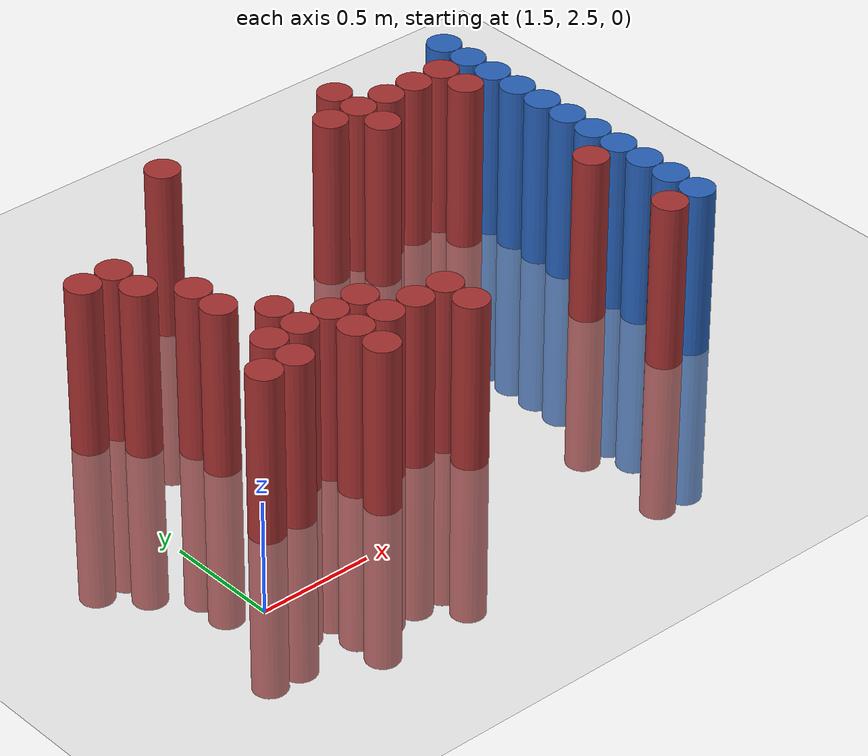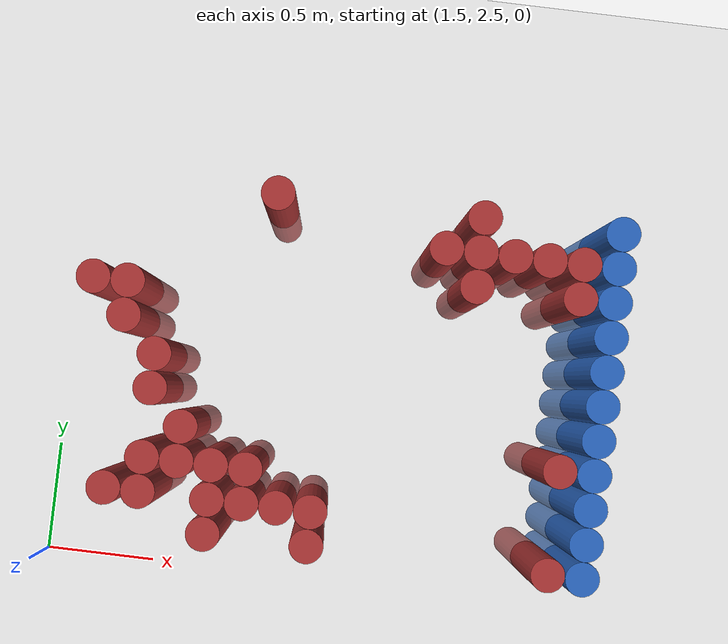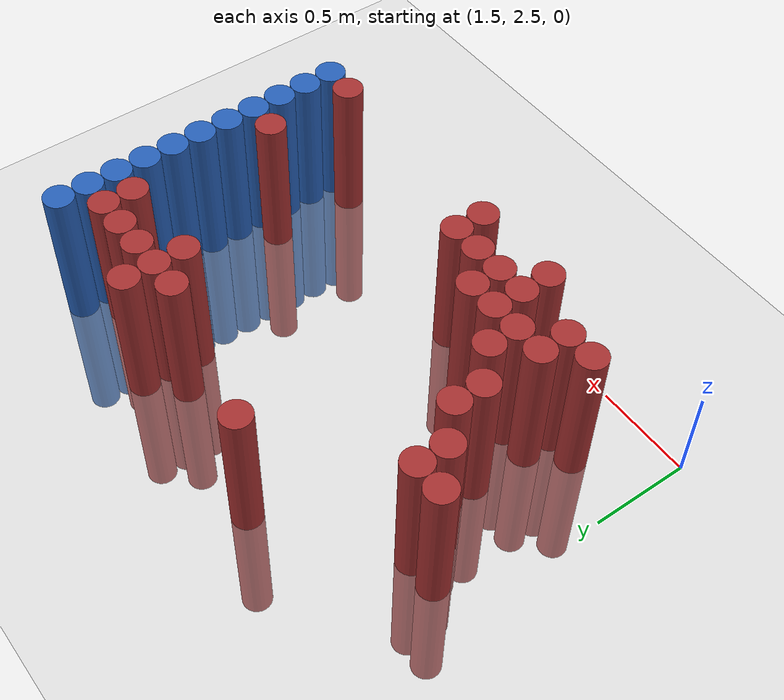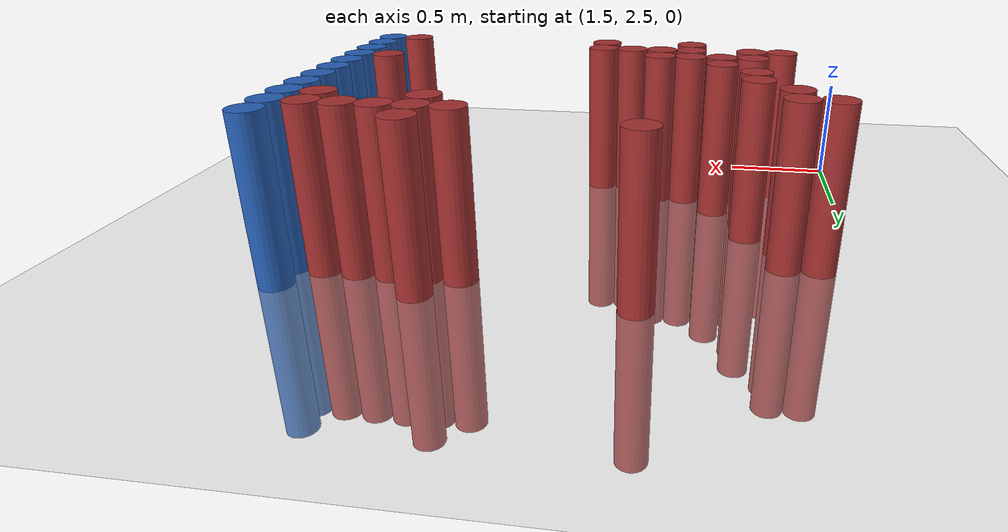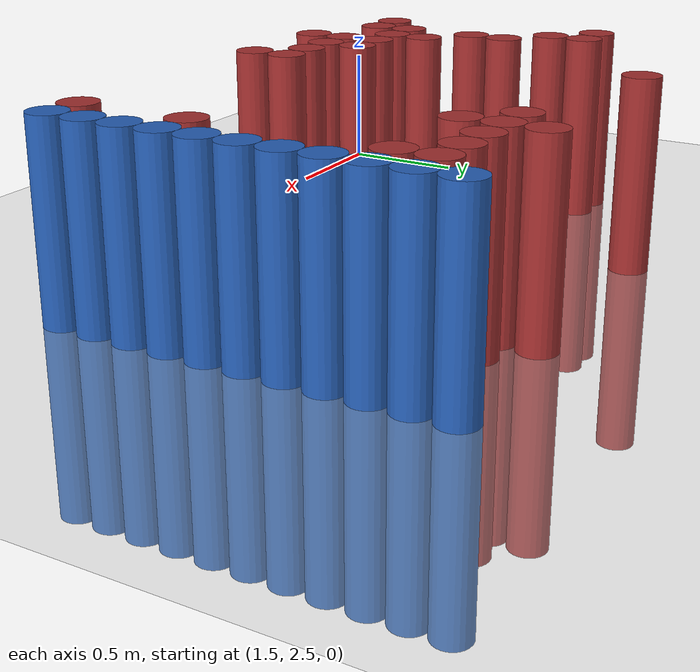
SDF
<sdf version="1.6">
 <world name="default">
  <model name="ground_plane">
   <static>1</static>
   <link name="link">
    <collision name="collision">
     <geometry><plane><normal>0 0 1</normal><size>100 100</size></plane></geometry>
     <surface><friction><ode><mu>100</mu><mu2>50</mu2></ode></friction></surface>
    </collision>
    <visual name="visual">
     <cast_shadows>0</cast_shadows>
     <geometry><plane><normal>0 0 1</normal><size>100 100</size></plane></geometry>
     <material>
      <script><uri>file://media/materials/scripts/gazebo.material</uri><name>Gazebo/Grey</name></script>
     </material>
    </visual>
   </link>
  </model>
  <model name="unit_cylinder_150">
   <static>1</static>
   <pose>3.925000 2.725000 0.000000 0.000000 0.000000 0.000000</pose>
   <link name="link">
    <inertial>
     <mass>1</mass>
     <inertia><ixx>0.145833</ixx><ixy>0</ixy><ixz>0</ixz><iyy>0.145833</iyy><iyz>0</iyz><izz>0.125</izz></inertia>
    </inertial>
    <collision name="collision">
     <geometry><cylinder><radius>0.075000</radius><length>1.5</length></cylinder></geometry>
    </collision>
    <visual name="visual">
     <geometry><cylinder><radius>0.075000</radius><length>1.5</length></cylinder></geometry>
     <material>
      <ambient>0.152000 0.379000 0.720000 1</ambient>
      <diffuse>0.152000 0.379000 0.720000 1</diffuse>
     </material>
     <material>
      <script><name>Gazebo/Grey</name><uri>file://media/materials/scripts/gazebo.material</uri></script>
     </material>
    </visual>
   </link>
  </model>
  <model name="unit_cylinder_152">
   <static>1</static>
   <pose>3.925000 2.875000 0.000000 0.000000 0.000000 0.000000</pose>
   <link name="link">
    <inertial>
     <mass>1</mass>
     <inertia><ixx>0.145833</ixx><ixy>0</ixy><ixz>0</ixz><iyy>0.145833</iyy><iyz>0</iyz><izz>0.125</izz></inertia>
    </inertial>
    <collision name="collision">
     <geometry><cylinder><radius>0.075000</radius><length>1.5</length></cylinder></geometry>
    </collision>
    <visual name="visual">
     <geometry><cylinder><radius>0.075000</radius><length>1.5</length></cylinder></geometry>
     <material>
      <ambient>0.152000 0.379000 0.720000 1</ambient>
      <diffuse>0.152000 0.379000 0.720000 1</diffuse>
     </material>
     <material>
      <script><name>Gazebo/Grey</name><uri>file://media/materials/scripts/gazebo.material</uri></script>
     </material>
    </visual>
   </link>
  </model>
  <model name="unit_cylinder_154">
   <static>1</static>
   <pose>3.925000 3.025000 0.000000 0.000000 0.000000 0.000000</pose>
   <link name="link">
    <inertial>
     <mass>1</mass>
     <inertia><ixx>0.145833</ixx><ixy>0</ixy><ixz>0</ixz><iyy>0.145833</iyy><iyz>0</iyz><izz>0.125</izz></inertia>
    </inertial>
    <collision name="collision">
     <geometry><cylinder><radius>0.075000</radius><length>1.5</length></cylinder></geometry>
    </collision>
    <visual name="visual">
     <geometry><cylinder><radius>0.075000</radius><length>1.5</length></cylinder></geometry>
     <material>
      <ambient>0.152000 0.379000 0.720000 1</ambient>
      <diffuse>0.152000 0.379000 0.720000 1</diffuse>
     </material>
     <material>
      <script><name>Gazebo/Grey</name><uri>file://media/materials/scripts/gazebo.material</uri></script>
     </material>
    </visual>
   </link>
  </model>
  <model name="unit_cylinder_156">
   <static>1</static>
   <pose>3.925000 3.175000 0.000000 0.000000 0.000000 0.000000</pose>
   <link name="link">
    <inertial>
     <mass>1</mass>
     <inertia><ixx>0.145833</ixx><ixy>0</ixy><ixz>0</ixz><iyy>0.145833</iyy><iyz>0</iyz><izz>0.125</izz></inertia>
    </inertial>
    <collision name="collision">
     <geometry><cylinder><radius>0.075000</radius><length>1.5</length></cylinder></geometry>
    </collision>
    <visual name="visual">
     <geometry><cylinder><radius>0.075000</radius><length>1.5</length></cylinder></geometry>
     <material>
      <ambient>0.152000 0.379000 0.720000 1</ambient>
      <diffuse>0.152000 0.379000 0.720000 1</diffuse>
     </material>
     <material>
      <script><name>Gazebo/Grey</name><uri>file://media/materials/scripts/gazebo.material</uri></script>
     </material>
    </visual>
   </link>
  </model>
  <model name="unit_cylinder_158">
   <static>1</static>
   <pose>3.925000 3.325000 0.000000 0.000000 0.000000 0.000000</pose>
   <link name="link">
    <inertial>
     <mass>1</mass>
     <inertia><ixx>0.145833</ixx><ixy>0</ixy><ixz>0</ixz><iyy>0.145833</iyy><iyz>0</iyz><izz>0.125</izz></inertia>
    </inertial>
    <collision name="collision">
     <geometry><cylinder><radius>0.075000</radius><length>1.5</length></cylinder></geometry>
    </collision>
    <visual name="visual">
     <geometry><cylinder><radius>0.075000</radius><length>1.5</length></cylinder></geometry>
     <material>
      <ambient>0.152000 0.379000 0.720000 1</ambient>
      <diffuse>0.152000 0.379000 0.720000 1</diffuse>
     </material>
     <material>
      <script><name>Gazebo/Grey</name><uri>file://media/materials/scripts/gazebo.material</uri></script>
     </material>
    </visual>
   </link>
  </model>
  <model name="unit_cylinder_160">
   <static>1</static>
   <pose>3.925000 3.475000 0.000000 0.000000 0.000000 0.000000</pose>
   <link name="link">
    <inertial>
     <mass>1</mass>
     <inertia><ixx>0.145833</ixx><ixy>0</ixy><ixz>0</ixz><iyy>0.145833</iyy><iyz>0</iyz><izz>0.125</izz></inertia>
    </inertial>
    <collision name="collision">
     <geometry><cylinder><radius>0.075000</radius><length>1.5</length></cylinder></geometry>
    </collision>
    <visual name="visual">
     <geometry><cylinder><radius>0.075000</radius><length>1.5</length></cylinder></geometry>
     <material>
      <ambient>0.152000 0.379000 0.720000 1</ambient>
      <diffuse>0.152000 0.379000 0.720000 1</diffuse>
     </material>
     <material>
      <script><name>Gazebo/Grey</name><uri>file://media/materials/scripts/gazebo.material</uri></script>
     </material>
    </visual>
   </link>
  </model>
  <model name="unit_cylinder_162">
   <static>1</static>
   <pose>3.925000 3.625000 0.000000 0.000000 0.000000 0.000000</pose>
   <link name="link">
    <inertial>
     <mass>1</mass>
     <inertia><ixx>0.145833</ixx><ixy>0</ixy><ixz>0</ixz><iyy>0.145833</iyy><iyz>0</iyz><izz>0.125</izz></inertia>
    </inertial>
    <collision name="collision">
     <geometry><cylinder><radius>0.075000</radius><length>1.5</length></cylinder></geometry>
    </collision>
    <visual name="visual">
     <geometry><cylinder><radius>0.075000</radius><length>1.5</length></cylinder></geometry>
     <material>
      <ambient>0.152000 0.379000 0.720000 1</ambient>
      <diffuse>0.152000 0.379000 0.720000 1</diffuse>
     </material>
     <material>
      <script><name>Gazebo/Grey</name><uri>file://media/materials/scripts/gazebo.material</uri></script>
     </material>
    </visual>
   </link>
  </model>
  <model name="unit_cylinder_164">
   <static>1</static>
   <pose>3.925000 3.775000 0.000000 0.000000 0.000000 0.000000</pose>
   <link name="link">
    <inertial>
     <mass>1</mass>
     <inertia><ixx>0.145833</ixx><ixy>0</ixy><ixz>0</ixz><iyy>0.145833</iyy><iyz>0</iyz><izz>0.125</izz></inertia>
    </inertial>
    <collision name="collision">
     <geometry><cylinder><radius>0.075000</radius><length>1.5</length></cylinder></geometry>
    </collision>
    <visual name="visual">
     <geometry><cylinder><radius>0.075000</radius><length>1.5</length></cylinder></geometry>
     <material>
      <ambient>0.152000 0.379000 0.720000 1</ambient>
      <diffuse>0.152000 0.379000 0.720000 1</diffuse>
     </material>
     <material>
      <script><name>Gazebo/Grey</name><uri>file://media/materials/scripts/gazebo.material</uri></script>
     </material>
    </visual>
   </link>
  </model>
  <model name="unit_cylinder_166">
   <static>1</static>
   <pose>3.925000 3.925000 0.000000 0.000000 0.000000 0.000000</pose>
   <link name="link">
    <inertial>
     <mass>1</mass>
     <inertia><ixx>0.145833</ixx><ixy>0</ixy><ixz>0</ixz><iyy>0.145833</iyy><iyz>0</iyz><izz>0.125</izz></inertia>
    </inertial>
    <collision name="collision">
     <geometry><cylinder><radius>0.075000</radius><length>1.5</length></cylinder></geometry>
    </collision>
    <visual name="visual">
     <geometry><cylinder><radius>0.075000</radius><length>1.5</length></cylinder></geometry>
     <material>
      <ambient>0.152000 0.379000 0.720000 1</ambient>
      <diffuse>0.152000 0.379000 0.720000 1</diffuse>
     </material>
     <material>
      <script><name>Gazebo/Grey</name><uri>file://media/materials/scripts/gazebo.material</uri></script>
     </material>
    </visual>
   </link>
  </model>
  <model name="unit_cylinder_168">
   <static>1</static>
   <pose>3.925000 4.075000 0.000000 0.000000 0.000000 0.000000</pose>
   <link name="link">
    <inertial>
     <mass>1</mass>
     <inertia><ixx>0.145833</ixx><ixy>0</ixy><ixz>0</ixz><iyy>0.145833</iyy><iyz>0</iyz><izz>0.125</izz></inertia>
    </inertial>
    <collision name="collision">
     <geometry><cylinder><radius>0.075000</radius><length>1.5</length></cylinder></geometry>
    </collision>
    <visual name="visual">
     <geometry><cylinder><radius>0.075000</radius><length>1.5</length></cylinder></geometry>
     <material>
      <ambient>0.152000 0.379000 0.720000 1</ambient>
      <diffuse>0.152000 0.379000 0.720000 1</diffuse>
     </material>
     <material>
      <script><name>Gazebo/Grey</name><uri>file://media/materials/scripts/gazebo.material</uri></script>
     </material>
    </visual>
   </link>
  </model>
  <model name="unit_cylinder_170">
   <static>1</static>
   <pose>3.925000 4.225000 0.000000 0.000000 0.000000 0.000000</pose>
   <link name="link">
    <inertial>
     <mass>1</mass>
     <inertia><ixx>0.145833</ixx><ixy>0</ixy><ixz>0</ixz><iyy>0.145833</iyy><iyz>0</iyz><izz>0.125</izz></inertia>
    </inertial>
    <collision name="collision">
     <geometry><cylinder><radius>0.075000</radius><length>1.5</length></cylinder></geometry>
    </collision>
    <visual name="visual">
     <geometry><cylinder><radius>0.075000</radius><length>1.5</length></cylinder></geometry>
     <material>
      <ambient>0.152000 0.379000 0.720000 1</ambient>
      <diffuse>0.152000 0.379000 0.720000 1</diffuse>
     </material>
     <material>
      <script><name>Gazebo/Grey</name><uri>file://media/materials/scripts/gazebo.material</uri></script>
     </material>
    </visual>
   </link>
  </model>
  <model name="unit_cylinder_430">
   <static>1</static>
   <pose>1.675000 3.775000 0.000000 0.000000 0.000000 0.000000</pose>
   <link name="link">
    <inertial>
     <mass>1</mass>
     <inertia><ixx>0.145833</ixx><ixy>0</ixy><ixz>0</ixz><iyy>0.145833</iyy><iyz>0</iyz><izz>0.125</izz></inertia>
    </inertial>
    <collision name="collision">
     <geometry><cylinder><radius>0.075000</radius><length>1.5</length></cylinder></geometry>
    </collision>
    <visual name="visual">
     <geometry><cylinder><radius>0.075000</radius><length>1.5</length></cylinder></geometry>
     <material>
      <ambient>0.648000 0.192000 0.192000 1</ambient>
      <diffuse>0.648000 0.192000 0.192000 1</diffuse>
     </material>
     <material>
      <script><name>Gazebo/Grey</name><uri>file://media/materials/scripts/gazebo.material</uri></script>
     </material>
    </visual>
   </link>
  </model>
  <model name="unit_cylinder_434">
   <static>1</static>
   <pose>1.825000 2.875000 0.000000 0.000000 0.000000 0.000000</pose>
   <link name="link">
    <inertial>
     <mass>1</mass>
     <inertia><ixx>0.145833</ixx><ixy>0</ixy><ixz>0</ixz><iyy>0.145833</iyy><iyz>0</iyz><izz>0.125</izz></inertia>
    </inertial>
    <collision name="collision">
     <geometry><cylinder><radius>0.075000</radius><length>1.5</length></cylinder></geometry>
    </collision>
    <visual name="visual">
     <geometry><cylinder><radius>0.075000</radius><length>1.5</length></cylinder></geometry>
     <material>
      <ambient>0.648000 0.192000 0.192000 1</ambient>
      <diffuse>0.648000 0.192000 0.192000 1</diffuse>
     </material>
     <material>
      <script><name>Gazebo/Grey</name><uri>file://media/materials/scripts/gazebo.material</uri></script>
     </material>
    </visual>
   </link>
  </model>
  <model name="unit_cylinder_435">
   <static>1</static>
   <pose>1.825000 3.625000 0.000000 0.000000 0.000000 0.000000</pose>
   <link name="link">
    <inertial>
     <mass>1</mass>
     <inertia><ixx>0.145833</ixx><ixy>0</ixy><ixz>0</ixz><iyy>0.145833</iyy><iyz>0</iyz><izz>0.125</izz></inertia>
    </inertial>
    <collision name="collision">
     <geometry><cylinder><radius>0.075000</radius><length>1.5</length></cylinder></geometry>
    </collision>
    <visual name="visual">
     <geometry><cylinder><radius>0.075000</radius><length>1.5</length></cylinder></geometry>
     <material>
      <ambient>0.648000 0.192000 0.192000 1</ambient>
      <diffuse>0.648000 0.192000 0.192000 1</diffuse>
     </material>
     <material>
      <script><name>Gazebo/Grey</name><uri>file://media/materials/scripts/gazebo.material</uri></script>
     </material>
    </visual>
   </link>
  </model>
  <model name="unit_cylinder_436">
   <static>1</static>
   <pose>1.825000 3.775000 0.000000 0.000000 0.000000 0.000000</pose>
   <link name="link">
    <inertial>
     <mass>1</mass>
     <inertia><ixx>0.145833</ixx><ixy>0</ixy><ixz>0</ixz><iyy>0.145833</iyy><iyz>0</iyz><izz>0.125</izz></inertia>
    </inertial>
    <collision name="collision">
     <geometry><cylinder><radius>0.075000</radius><length>1.5</length></cylinder></geometry>
    </collision>
    <visual name="visual">
     <geometry><cylinder><radius>0.075000</radius><length>1.5</length></cylinder></geometry>
     <material>
      <ambient>0.648000 0.192000 0.192000 1</ambient>
      <diffuse>0.648000 0.192000 0.192000 1</diffuse>
     </material>
     <material>
      <script><name>Gazebo/Grey</name><uri>file://media/materials/scripts/gazebo.material</uri></script>
     </material>
    </visual>
   </link>
  </model>
  <model name="unit_cylinder_443">
   <static>1</static>
   <pose>1.975000 2.875000 0.000000 0.000000 0.000000 0.000000</pose>
   <link name="link">
    <inertial>
     <mass>1</mass>
     <inertia><ixx>0.145833</ixx><ixy>0</ixy><ixz>0</ixz><iyy>0.145833</iyy><iyz>0</iyz><izz>0.125</izz></inertia>
    </inertial>
    <collision name="collision">
     <geometry><cylinder><radius>0.075000</radius><length>1.5</length></cylinder></geometry>
    </collision>
    <visual name="visual">
     <geometry><cylinder><radius>0.075000</radius><length>1.5</length></cylinder></geometry>
     <material>
      <ambient>0.648000 0.192000 0.192000 1</ambient>
      <diffuse>0.648000 0.192000 0.192000 1</diffuse>
     </material>
     <material>
      <script><name>Gazebo/Grey</name><uri>file://media/materials/scripts/gazebo.material</uri></script>
     </material>
    </visual>
   </link>
  </model>
  <model name="unit_cylinder_444">
   <static>1</static>
   <pose>1.975000 3.025000 0.000000 0.000000 0.000000 0.000000</pose>
   <link name="link">
    <inertial>
     <mass>1</mass>
     <inertia><ixx>0.145833</ixx><ixy>0</ixy><ixz>0</ixz><iyy>0.145833</iyy><iyz>0</iyz><izz>0.125</izz></inertia>
    </inertial>
    <collision name="collision">
     <geometry><cylinder><radius>0.075000</radius><length>1.5</length></cylinder></geometry>
    </collision>
    <visual name="visual">
     <geometry><cylinder><radius>0.075000</radius><length>1.5</length></cylinder></geometry>
     <material>
      <ambient>0.648000 0.192000 0.192000 1</ambient>
      <diffuse>0.648000 0.192000 0.192000 1</diffuse>
     </material>
     <material>
      <script><name>Gazebo/Grey</name><uri>file://media/materials/scripts/gazebo.material</uri></script>
     </material>
    </visual>
   </link>
  </model>
  <model name="unit_cylinder_445">
   <static>1</static>
   <pose>1.975000 3.325000 0.000000 0.000000 0.000000 0.000000</pose>
   <link name="link">
    <inertial>
     <mass>1</mass>
     <inertia><ixx>0.145833</ixx><ixy>0</ixy><ixz>0</ixz><iyy>0.145833</iyy><iyz>0</iyz><izz>0.125</izz></inertia>
    </inertial>
    <collision name="collision">
     <geometry><cylinder><radius>0.075000</radius><length>1.5</length></cylinder></geometry>
    </collision>
    <visual name="visual">
     <geometry><cylinder><radius>0.075000</radius><length>1.5</length></cylinder></geometry>
     <material>
      <ambient>0.648000 0.192000 0.192000 1</ambient>
      <diffuse>0.648000 0.192000 0.192000 1</diffuse>
     </material>
     <material>
      <script><name>Gazebo/Grey</name><uri>file://media/materials/scripts/gazebo.material</uri></script>
     </material>
    </visual>
   </link>
  </model>
  <model name="unit_cylinder_446">
   <static>1</static>
   <pose>1.975000 3.475000 0.000000 0.000000 0.000000 0.000000</pose>
   <link name="link">
    <inertial>
     <mass>1</mass>
     <inertia><ixx>0.145833</ixx><ixy>0</ixy><ixz>0</ixz><iyy>0.145833</iyy><iyz>0</iyz><izz>0.125</izz></inertia>
    </inertial>
    <collision name="collision">
     <geometry><cylinder><radius>0.075000</radius><length>1.5</length></cylinder></geometry>
    </collision>
    <visual name="visual">
     <geometry><cylinder><radius>0.075000</radius><length>1.5</length></cylinder></geometry>
     <material>
      <ambient>0.648000 0.192000 0.192000 1</ambient>
      <diffuse>0.648000 0.192000 0.192000 1</diffuse>
     </material>
     <material>
      <script><name>Gazebo/Grey</name><uri>file://media/materials/scripts/gazebo.material</uri></script>
     </material>
    </visual>
   </link>
  </model>
  <model name="unit_cylinder_455">
   <static>1</static>
   <pose>2.125000 3.025000 0.000000 0.000000 0.000000 0.000000</pose>
   <link name="link">
    <inertial>
     <mass>1</mass>
     <inertia><ixx>0.145833</ixx><ixy>0</ixy><ixz>0</ixz><iyy>0.145833</iyy><iyz>0</iyz><izz>0.125</izz></inertia>
    </inertial>
    <collision name="collision">
     <geometry><cylinder><radius>0.075000</radius><length>1.5</length></cylinder></geometry>
    </collision>
    <visual name="visual">
     <geometry><cylinder><radius>0.075000</radius><length>1.5</length></cylinder></geometry>
     <material>
      <ambient>0.648000 0.192000 0.192000 1</ambient>
      <diffuse>0.648000 0.192000 0.192000 1</diffuse>
     </material>
     <material>
      <script><name>Gazebo/Grey</name><uri>file://media/materials/scripts/gazebo.material</uri></script>
     </material>
    </visual>
   </link>
  </model>
  <model name="unit_cylinder_456">
   <static>1</static>
   <pose>2.125000 3.175000 0.000000 0.000000 0.000000 0.000000</pose>
   <link name="link">
    <inertial>
     <mass>1</mass>
     <inertia><ixx>0.145833</ixx><ixy>0</ixy><ixz>0</ixz><iyy>0.145833</iyy><iyz>0</iyz><izz>0.125</izz></inertia>
    </inertial>
    <collision name="collision">
     <geometry><cylinder><radius>0.075000</radius><length>1.5</length></cylinder></geometry>
    </collision>
    <visual name="visual">
     <geometry><cylinder><radius>0.075000</radius><length>1.5</length></cylinder></geometry>
     <material>
      <ambient>0.648000 0.192000 0.192000 1</ambient>
      <diffuse>0.648000 0.192000 0.192000 1</diffuse>
     </material>
     <material>
      <script><name>Gazebo/Grey</name><uri>file://media/materials/scripts/gazebo.material</uri></script>
     </material>
    </visual>
   </link>
  </model>
  <model name="unit_cylinder_467">
   <static>1</static>
   <pose>2.275000 2.725000 0.000000 0.000000 0.000000 0.000000</pose>
   <link name="link">
    <inertial>
     <mass>1</mass>
     <inertia><ixx>0.145833</ixx><ixy>0</ixy><ixz>0</ixz><iyy>0.145833</iyy><iyz>0</iyz><izz>0.125</izz></inertia>
    </inertial>
    <collision name="collision">
     <geometry><cylinder><radius>0.075000</radius><length>1.5</length></cylinder></geometry>
    </collision>
    <visual name="visual">
     <geometry><cylinder><radius>0.075000</radius><length>1.5</length></cylinder></geometry>
     <material>
      <ambient>0.648000 0.192000 0.192000 1</ambient>
      <diffuse>0.648000 0.192000 0.192000 1</diffuse>
     </material>
     <material>
      <script><name>Gazebo/Grey</name><uri>file://media/materials/scripts/gazebo.material</uri></script>
     </material>
    </visual>
   </link>
  </model>
  <model name="unit_cylinder_468">
   <static>1</static>
   <pose>2.275000 2.875000 0.000000 0.000000 0.000000 0.000000</pose>
   <link name="link">
    <inertial>
     <mass>1</mass>
     <inertia><ixx>0.145833</ixx><ixy>0</ixy><ixz>0</ixz><iyy>0.145833</iyy><iyz>0</iyz><izz>0.125</izz></inertia>
    </inertial>
    <collision name="collision">
     <geometry><cylinder><radius>0.075000</radius><length>1.5</length></cylinder></geometry>
    </collision>
    <visual name="visual">
     <geometry><cylinder><radius>0.075000</radius><length>1.5</length></cylinder></geometry>
     <material>
      <ambient>0.648000 0.192000 0.192000 1</ambient>
      <diffuse>0.648000 0.192000 0.192000 1</diffuse>
     </material>
     <material>
      <script><name>Gazebo/Grey</name><uri>file://media/materials/scripts/gazebo.material</uri></script>
     </material>
    </visual>
   </link>
  </model>
  <model name="unit_cylinder_469">
   <static>1</static>
   <pose>2.275000 3.025000 0.000000 0.000000 0.000000 0.000000</pose>
   <link name="link">
    <inertial>
     <mass>1</mass>
     <inertia><ixx>0.145833</ixx><ixy>0</ixy><ixz>0</ixz><iyy>0.145833</iyy><iyz>0</iyz><izz>0.125</izz></inertia>
    </inertial>
    <collision name="collision">
     <geometry><cylinder><radius>0.075000</radius><length>1.5</length></cylinder></geometry>
    </collision>
    <visual name="visual">
     <geometry><cylinder><radius>0.075000</radius><length>1.5</length></cylinder></geometry>
     <material>
      <ambient>0.648000 0.192000 0.192000 1</ambient>
      <diffuse>0.648000 0.192000 0.192000 1</diffuse>
     </material>
     <material>
      <script><name>Gazebo/Grey</name><uri>file://media/materials/scripts/gazebo.material</uri></script>
     </material>
    </visual>
   </link>
  </model>
  <model name="unit_cylinder_481">
   <static>1</static>
   <pose>2.425000 2.875000 0.000000 0.000000 0.000000 0.000000</pose>
   <link name="link">
    <inertial>
     <mass>1</mass>
     <inertia><ixx>0.145833</ixx><ixy>0</ixy><ixz>0</ixz><iyy>0.145833</iyy><iyz>0</iyz><izz>0.125</izz></inertia>
    </inertial>
    <collision name="collision">
     <geometry><cylinder><radius>0.075000</radius><length>1.5</length></cylinder></geometry>
    </collision>
    <visual name="visual">
     <geometry><cylinder><radius>0.075000</radius><length>1.5</length></cylinder></geometry>
     <material>
      <ambient>0.648000 0.192000 0.192000 1</ambient>
      <diffuse>0.648000 0.192000 0.192000 1</diffuse>
     </material>
     <material>
      <script><name>Gazebo/Grey</name><uri>file://media/materials/scripts/gazebo.material</uri></script>
     </material>
    </visual>
   </link>
  </model>
  <model name="unit_cylinder_482">
   <static>1</static>
   <pose>2.425000 3.025000 0.000000 0.000000 0.000000 0.000000</pose>
   <link name="link">
    <inertial>
     <mass>1</mass>
     <inertia><ixx>0.145833</ixx><ixy>0</ixy><ixz>0</ixz><iyy>0.145833</iyy><iyz>0</iyz><izz>0.125</izz></inertia>
    </inertial>
    <collision name="collision">
     <geometry><cylinder><radius>0.075000</radius><length>1.5</length></cylinder></geometry>
    </collision>
    <visual name="visual">
     <geometry><cylinder><radius>0.075000</radius><length>1.5</length></cylinder></geometry>
     <material>
      <ambient>0.648000 0.192000 0.192000 1</ambient>
      <diffuse>0.648000 0.192000 0.192000 1</diffuse>
     </material>
     <material>
      <script><name>Gazebo/Grey</name><uri>file://media/materials/scripts/gazebo.material</uri></script>
     </material>
    </visual>
   </link>
  </model>
  <model name="unit_cylinder_483">
   <static>1</static>
   <pose>2.425000 4.225000 0.000000 0.000000 0.000000 0.000000</pose>
   <link name="link">
    <inertial>
     <mass>1</mass>
     <inertia><ixx>0.145833</ixx><ixy>0</ixy><ixz>0</ixz><iyy>0.145833</iyy><iyz>0</iyz><izz>0.125</izz></inertia>
    </inertial>
    <collision name="collision">
     <geometry><cylinder><radius>0.075000</radius><length>1.5</length></cylinder></geometry>
    </collision>
    <visual name="visual">
     <geometry><cylinder><radius>0.075000</radius><length>1.5</length></cylinder></geometry>
     <material>
      <ambient>0.648000 0.192000 0.192000 1</ambient>
      <diffuse>0.648000 0.192000 0.192000 1</diffuse>
     </material>
     <material>
      <script><name>Gazebo/Grey</name><uri>file://media/materials/scripts/gazebo.material</uri></script>
     </material>
    </visual>
   </link>
  </model>
  <model name="unit_cylinder_494">
   <static>1</static>
   <pose>2.575000 2.875000 0.000000 0.000000 0.000000 0.000000</pose>
   <link name="link">
    <inertial>
     <mass>1</mass>
     <inertia><ixx>0.145833</ixx><ixy>0</ixy><ixz>0</ixz><iyy>0.145833</iyy><iyz>0</iyz><izz>0.125</izz></inertia>
    </inertial>
    <collision name="collision">
     <geometry><cylinder><radius>0.075000</radius><length>1.5</length></cylinder></geometry>
    </collision>
    <visual name="visual">
     <geometry><cylinder><radius>0.075000</radius><length>1.5</length></cylinder></geometry>
     <material>
      <ambient>0.648000 0.192000 0.192000 1</ambient>
      <diffuse>0.648000 0.192000 0.192000 1</diffuse>
     </material>
     <material>
      <script><name>Gazebo/Grey</name><uri>file://media/materials/scripts/gazebo.material</uri></script>
     </material>
    </visual>
   </link>
  </model>
  <model name="unit_cylinder_499">
   <static>1</static>
   <pose>2.725000 2.725000 0.000000 0.000000 0.000000 0.000000</pose>
   <link name="link">
    <inertial>
     <mass>1</mass>
     <inertia><ixx>0.145833</ixx><ixy>0</ixy><ixz>0</ixz><iyy>0.145833</iyy><iyz>0</iyz><izz>0.125</izz></inertia>
    </inertial>
    <collision name="collision">
     <geometry><cylinder><radius>0.075000</radius><length>1.5</length></cylinder></geometry>
    </collision>
    <visual name="visual">
     <geometry><cylinder><radius>0.075000</radius><length>1.5</length></cylinder></geometry>
     <material>
      <ambient>0.648000 0.192000 0.192000 1</ambient>
      <diffuse>0.648000 0.192000 0.192000 1</diffuse>
     </material>
     <material>
      <script><name>Gazebo/Grey</name><uri>file://media/materials/scripts/gazebo.material</uri></script>
     </material>
    </visual>
   </link>
  </model>
  <model name="unit_cylinder_500">
   <static>1</static>
   <pose>2.725000 2.875000 0.000000 0.000000 0.000000 0.000000</pose>
   <link name="link">
    <inertial>
     <mass>1</mass>
     <inertia><ixx>0.145833</ixx><ixy>0</ixy><ixz>0</ixz><iyy>0.145833</iyy><iyz>0</iyz><izz>0.125</izz></inertia>
    </inertial>
    <collision name="collision">
     <geometry><cylinder><radius>0.075000</radius><length>1.5</length></cylinder></geometry>
    </collision>
    <visual name="visual">
     <geometry><cylinder><radius>0.075000</radius><length>1.5</length></cylinder></geometry>
     <material>
      <ambient>0.648000 0.192000 0.192000 1</ambient>
      <diffuse>0.648000 0.192000 0.192000 1</diffuse>
     </material>
     <material>
      <script><name>Gazebo/Grey</name><uri>file://media/materials/scripts/gazebo.material</uri></script>
     </material>
    </visual>
   </link>
  </model>
  <model name="unit_cylinder_513">
   <static>1</static>
   <pose>3.175000 4.075000 0.000000 0.000000 0.000000 0.000000</pose>
   <link name="link">
    <inertial>
     <mass>1</mass>
     <inertia><ixx>0.145833</ixx><ixy>0</ixy><ixz>0</ixz><iyy>0.145833</iyy><iyz>0</iyz><izz>0.125</izz></inertia>
    </inertial>
    <collision name="collision">
     <geometry><cylinder><radius>0.075000</radius><length>1.5</length></cylinder></geometry>
    </collision>
    <visual name="visual">
     <geometry><cylinder><radius>0.075000</radius><length>1.5</length></cylinder></geometry>
     <material>
      <ambient>0.648000 0.192000 0.192000 1</ambient>
      <diffuse>0.648000 0.192000 0.192000 1</diffuse>
     </material>
     <material>
      <script><name>Gazebo/Grey</name><uri>file://media/materials/scripts/gazebo.material</uri></script>
     </material>
    </visual>
   </link>
  </model>
  <model name="unit_cylinder_520">
   <static>1</static>
   <pose>3.325000 3.925000 0.000000 0.000000 0.000000 0.000000</pose>
   <link name="link">
    <inertial>
     <mass>1</mass>
     <inertia><ixx>0.145833</ixx><ixy>0</ixy><ixz>0</ixz><iyy>0.145833</iyy><iyz>0</iyz><izz>0.125</izz></inertia>
    </inertial>
    <collision name="collision">
     <geometry><cylinder><radius>0.075000</radius><length>1.5</length></cylinder></geometry>
    </collision>
    <visual name="visual">
     <geometry><cylinder><radius>0.075000</radius><length>1.5</length></cylinder></geometry>
     <material>
      <ambient>0.648000 0.192000 0.192000 1</ambient>
      <diffuse>0.648000 0.192000 0.192000 1</diffuse>
     </material>
     <material>
      <script><name>Gazebo/Grey</name><uri>file://media/materials/scripts/gazebo.material</uri></script>
     </material>
    </visual>
   </link>
  </model>
  <model name="unit_cylinder_521">
   <static>1</static>
   <pose>3.325000 4.075000 0.000000 0.000000 0.000000 0.000000</pose>
   <link name="link">
    <inertial>
     <mass>1</mass>
     <inertia><ixx>0.145833</ixx><ixy>0</ixy><ixz>0</ixz><iyy>0.145833</iyy><iyz>0</iyz><izz>0.125</izz></inertia>
    </inertial>
    <collision name="collision">
     <geometry><cylinder><radius>0.075000</radius><length>1.5</length></cylinder></geometry>
    </collision>
    <visual name="visual">
     <geometry><cylinder><radius>0.075000</radius><length>1.5</length></cylinder></geometry>
     <material>
      <ambient>0.648000 0.192000 0.192000 1</ambient>
      <diffuse>0.648000 0.192000 0.192000 1</diffuse>
     </material>
     <material>
      <script><name>Gazebo/Grey</name><uri>file://media/materials/scripts/gazebo.material</uri></script>
     </material>
    </visual>
   </link>
  </model>
  <model name="unit_cylinder_522">
   <static>1</static>
   <pose>3.325000 4.225000 0.000000 0.000000 0.000000 0.000000</pose>
   <link name="link">
    <inertial>
     <mass>1</mass>
     <inertia><ixx>0.145833</ixx><ixy>0</ixy><ixz>0</ixz><iyy>0.145833</iyy><iyz>0</iyz><izz>0.125</izz></inertia>
    </inertial>
    <collision name="collision">
     <geometry><cylinder><radius>0.075000</radius><length>1.5</length></cylinder></geometry>
    </collision>
    <visual name="visual">
     <geometry><cylinder><radius>0.075000</radius><length>1.5</length></cylinder></geometry>
     <material>
      <ambient>0.648000 0.192000 0.192000 1</ambient>
      <diffuse>0.648000 0.192000 0.192000 1</diffuse>
     </material>
     <material>
      <script><name>Gazebo/Grey</name><uri>file://media/materials/scripts/gazebo.material</uri></script>
     </material>
    </visual>
   </link>
  </model>
  <model name="unit_cylinder_534">
   <static>1</static>
   <pose>3.475000 4.075000 0.000000 0.000000 0.000000 0.000000</pose>
   <link name="link">
    <inertial>
     <mass>1</mass>
     <inertia><ixx>0.145833</ixx><ixy>0</ixy><ixz>0</ixz><iyy>0.145833</iyy><iyz>0</iyz><izz>0.125</izz></inertia>
    </inertial>
    <collision name="collision">
     <geometry><cylinder><radius>0.075000</radius><length>1.5</length></cylinder></geometry>
    </collision>
    <visual name="visual">
     <geometry><cylinder><radius>0.075000</radius><length>1.5</length></cylinder></geometry>
     <material>
      <ambient>0.648000 0.192000 0.192000 1</ambient>
      <diffuse>0.648000 0.192000 0.192000 1</diffuse>
     </material>
     <material>
      <script><name>Gazebo/Grey</name><uri>file://media/materials/scripts/gazebo.material</uri></script>
     </material>
    </visual>
   </link>
  </model>
  <model name="unit_cylinder_548">
   <static>1</static>
   <pose>3.625000 4.075000 0.000000 0.000000 0.000000 0.000000</pose>
   <link name="link">
    <inertial>
     <mass>1</mass>
     <inertia><ixx>0.145833</ixx><ixy>0</ixy><ixz>0</ixz><iyy>0.145833</iyy><iyz>0</iyz><izz>0.125</izz></inertia>
    </inertial>
    <collision name="collision">
     <geometry><cylinder><radius>0.075000</radius><length>1.5</length></cylinder></geometry>
    </collision>
    <visual name="visual">
     <geometry><cylinder><radius>0.075000</radius><length>1.5</length></cylinder></geometry>
     <material>
      <ambient>0.648000 0.192000 0.192000 1</ambient>
      <diffuse>0.648000 0.192000 0.192000 1</diffuse>
     </material>
     <material>
      <script><name>Gazebo/Grey</name><uri>file://media/materials/scripts/gazebo.material</uri></script>
     </material>
    </visual>
   </link>
  </model>
  <model name="unit_cylinder_564">
   <static>1</static>
   <pose>3.775000 2.725000 0.000000 0.000000 0.000000 0.000000</pose>
   <link name="link">
    <inertial>
     <mass>1</mass>
     <inertia><ixx>0.145833</ixx><ixy>0</ixy><ixz>0</ixz><iyy>0.145833</iyy><iyz>0</iyz><izz>0.125</izz></inertia>
    </inertial>
    <collision name="collision">
     <geometry><cylinder><radius>0.075000</radius><length>1.5</length></cylinder></geometry>
    </collision>
    <visual name="visual">
     <geometry><cylinder><radius>0.075000</radius><length>1.5</length></cylinder></geometry>
     <material>
      <ambient>0.648000 0.192000 0.192000 1</ambient>
      <diffuse>0.648000 0.192000 0.192000 1</diffuse>
     </material>
     <material>
      <script><name>Gazebo/Grey</name><uri>file://media/materials/scripts/gazebo.material</uri></script>
     </material>
    </visual>
   </link>
  </model>
  <model name="unit_cylinder_565">
   <static>1</static>
   <pose>3.775000 3.175000 0.000000 0.000000 0.000000 0.000000</pose>
   <link name="link">
    <inertial>
     <mass>1</mass>
     <inertia><ixx>0.145833</ixx><ixy>0</ixy><ixz>0</ixz><iyy>0.145833</iyy><iyz>0</iyz><izz>0.125</izz></inertia>
    </inertial>
    <collision name="collision">
     <geometry><cylinder><radius>0.075000</radius><length>1.5</length></cylinder></geometry>
    </collision>
    <visual name="visual">
     <geometry><cylinder><radius>0.075000</radius><length>1.5</length></cylinder></geometry>
     <material>
      <ambient>0.648000 0.192000 0.192000 1</ambient>
      <diffuse>0.648000 0.192000 0.192000 1</diffuse>
     </material>
     <material>
      <script><name>Gazebo/Grey</name><uri>file://media/materials/scripts/gazebo.material</uri></script>
     </material>
    </visual>
   </link>
  </model>
  <model name="unit_cylinder_566">
   <static>1</static>
   <pose>3.775000 3.925000 0.000000 0.000000 0.000000 0.000000</pose>
   <link name="link">
    <inertial>
     <mass>1</mass>
     <inertia><ixx>0.145833</ixx><ixy>0</ixy><ixz>0</ixz><iyy>0.145833</iyy><iyz>0</iyz><izz>0.125</izz></inertia>
    </inertial>
    <collision name="collision">
     <geometry><cylinder><radius>0.075000</radius><length>1.5</length></cylinder></geometry>
    </collision>
    <visual name="visual">
     <geometry><cylinder><radius>0.075000</radius><length>1.5</length></cylinder></geometry>
     <material>
      <ambient>0.648000 0.192000 0.192000 1</ambient>
      <diffuse>0.648000 0.192000 0.192000 1</diffuse>
     </material>
     <material>
      <script><name>Gazebo/Grey</name><uri>file://media/materials/scripts/gazebo.material</uri></script>
     </material>
    </visual>
   </link>
  </model>
  <model name="unit_cylinder_567">
   <static>1</static>
   <pose>3.775000 4.075000 0.000000 0.000000 0.000000 0.000000</pose>
   <link name="link">
    <inertial>
     <mass>1</mass>
     <inertia><ixx>0.145833</ixx><ixy>0</ixy><ixz>0</ixz><iyy>0.145833</iyy><iyz>0</iyz><izz>0.125</izz></inertia>
    </inertial>
    <collision name="collision">
     <geometry><cylinder><radius>0.075000</radius><length>1.5</length></cylinder></geometry>
    </collision>
    <visual name="visual">
     <geometry><cylinder><radius>0.075000</radius><length>1.5</length></cylinder></geometry>
     <material>
      <ambient>0.648000 0.192000 0.192000 1</ambient>
      <diffuse>0.648000 0.192000 0.192000 1</diffuse>
     </material>
     <material>
      <script><name>Gazebo/Grey</name><uri>file://media/materials/scripts/gazebo.material</uri></script>
     </material>
    </visual>
   </link>
  </model>
  <model name="unit_cylinder_601">
   <static>1</static>
   <pose>3.925000 2.725000 0.000000 0.000000 0.000000 0.000000</pose>
   <link name="link">
    <inertial>
     <mass>1</mass>
     <inertia><ixx>0.145833</ixx><ixy>0</ixy><ixz>0</ixz><iyy>0.145833</iyy><iyz>0</iyz><izz>0.125</izz></inertia>
    </inertial>
    <collision name="collision">
     <geometry><cylinder><radius>0.075000</radius><length>1.5</length></cylinder></geometry>
    </collision>
    <visual name="visual">
     <geometry><cylinder><radius>0.075000</radius><length>1.5</length></cylinder></geometry>
     <material>
      <ambient>0.152000 0.379000 0.720000 1</ambient>
      <diffuse>0.152000 0.379000 0.720000 1</diffuse>
     </material>
     <material>
      <script><name>Gazebo/Grey</name><uri>file://media/materials/scripts/gazebo.material</uri></script>
     </material>
    </visual>
   </link>
  </model>
  <model name="unit_cylinder_602">
   <static>1</static>
   <pose>3.925000 2.875000 0.000000 0.000000 0.000000 0.000000</pose>
   <link name="link">
    <inertial>
     <mass>1</mass>
     <inertia><ixx>0.145833</ixx><ixy>0</ixy><ixz>0</ixz><iyy>0.145833</iyy><iyz>0</iyz><izz>0.125</izz></inertia>
    </inertial>
    <collision name="collision">
     <geometry><cylinder><radius>0.075000</radius><length>1.5</length></cylinder></geometry>
    </collision>
    <visual name="visual">
     <geometry><cylinder><radius>0.075000</radius><length>1.5</length></cylinder></geometry>
     <material>
      <ambient>0.152000 0.379000 0.720000 1</ambient>
      <diffuse>0.152000 0.379000 0.720000 1</diffuse>
     </material>
     <material>
      <script><name>Gazebo/Grey</name><uri>file://media/materials/scripts/gazebo.material</uri></script>
     </material>
    </visual>
   </link>
  </model>
  <model name="unit_cylinder_603">
   <static>1</static>
   <pose>3.925000 3.025000 0.000000 0.000000 0.000000 0.000000</pose>
   <link name="link">
    <inertial>
     <mass>1</mass>
     <inertia><ixx>0.145833</ixx><ixy>0</ixy><ixz>0</ixz><iyy>0.145833</iyy><iyz>0</iyz><izz>0.125</izz></inertia>
    </inertial>
    <collision name="collision">
     <geometry><cylinder><radius>0.075000</radius><length>1.5</length></cylinder></geometry>
    </collision>
    <visual name="visual">
     <geometry><cylinder><radius>0.075000</radius><length>1.5</length></cylinder></geometry>
     <material>
      <ambient>0.152000 0.379000 0.720000 1</ambient>
      <diffuse>0.152000 0.379000 0.720000 1</diffuse>
     </material>
     <material>
      <script><name>Gazebo/Grey</name><uri>file://media/materials/scripts/gazebo.material</uri></script>
     </material>
    </visual>
   </link>
  </model>
  <model name="unit_cylinder_604">
   <static>1</static>
   <pose>3.925000 3.175000 0.000000 0.000000 0.000000 0.000000</pose>
   <link name="link">
    <inertial>
     <mass>1</mass>
     <inertia><ixx>0.145833</ixx><ixy>0</ixy><ixz>0</ixz><iyy>0.145833</iyy><iyz>0</iyz><izz>0.125</izz></inertia>
    </inertial>
    <collision name="collision">
     <geometry><cylinder><radius>0.075000</radius><length>1.5</length></cylinder></geometry>
    </collision>
    <visual name="visual">
     <geometry><cylinder><radius>0.075000</radius><length>1.5</length></cylinder></geometry>
     <material>
      <ambient>0.152000 0.379000 0.720000 1</ambient>
      <diffuse>0.152000 0.379000 0.720000 1</diffuse>
     </material>
     <material>
      <script><name>Gazebo/Grey</name><uri>file://media/materials/scripts/gazebo.material</uri></script>
     </material>
    </visual>
   </link>
  </model>
  <model name="unit_cylinder_605">
   <static>1</static>
   <pose>3.925000 3.325000 0.000000 0.000000 0.000000 0.000000</pose>
   <link name="link">
    <inertial>
     <mass>1</mass>
     <inertia><ixx>0.145833</ixx><ixy>0</ixy><ixz>0</ixz><iyy>0.145833</iyy><iyz>0</iyz><izz>0.125</izz></inertia>
    </inertial>
    <collision name="collision">
     <geometry><cylinder><radius>0.075000</radius><length>1.5</length></cylinder></geometry>
    </collision>
    <visual name="visual">
     <geometry><cylinder><radius>0.075000</radius><length>1.5</length></cylinder></geometry>
     <material>
      <ambient>0.152000 0.379000 0.720000 1</ambient>
      <diffuse>0.152000 0.379000 0.720000 1</diffuse>
     </material>
     <material>
      <script><name>Gazebo/Grey</name><uri>file://media/materials/scripts/gazebo.material</uri></script>
     </material>
    </visual>
   </link>
  </model>
  <model name="unit_cylinder_606">
   <static>1</static>
   <pose>3.925000 3.475000 0.000000 0.000000 0.000000 0.000000</pose>
   <link name="link">
    <inertial>
     <mass>1</mass>
     <inertia><ixx>0.145833</ixx><ixy>0</ixy><ixz>0</ixz><iyy>0.145833</iyy><iyz>0</iyz><izz>0.125</izz></inertia>
    </inertial>
    <collision name="collision">
     <geometry><cylinder><radius>0.075000</radius><length>1.5</length></cylinder></geometry>
    </collision>
    <visual name="visual">
     <geometry><cylinder><radius>0.075000</radius><length>1.5</length></cylinder></geometry>
     <material>
      <ambient>0.152000 0.379000 0.720000 1</ambient>
      <diffuse>0.152000 0.379000 0.720000 1</diffuse>
     </material>
     <material>
      <script><name>Gazebo/Grey</name><uri>file://media/materials/scripts/gazebo.material</uri></script>
     </material>
    </visual>
   </link>
  </model>
  <model name="unit_cylinder_607">
   <static>1</static>
   <pose>3.925000 3.625000 0.000000 0.000000 0.000000 0.000000</pose>
   <link name="link">
    <inertial>
     <mass>1</mass>
     <inertia><ixx>0.145833</ixx><ixy>0</ixy><ixz>0</ixz><iyy>0.145833</iyy><iyz>0</iyz><izz>0.125</izz></inertia>
    </inertial>
    <collision name="collision">
     <geometry><cylinder><radius>0.075000</radius><length>1.5</length></cylinder></geometry>
    </collision>
    <visual name="visual">
     <geometry><cylinder><radius>0.075000</radius><length>1.5</length></cylinder></geometry>
     <material>
      <ambient>0.152000 0.379000 0.720000 1</ambient>
      <diffuse>0.152000 0.379000 0.720000 1</diffuse>
     </material>
     <material>
      <script><name>Gazebo/Grey</name><uri>file://media/materials/scripts/gazebo.material</uri></script>
     </material>
    </visual>
   </link>
  </model>
  <model name="unit_cylinder_608">
   <static>1</static>
   <pose>3.925000 3.775000 0.000000 0.000000 0.000000 0.000000</pose>
   <link name="link">
    <inertial>
     <mass>1</mass>
     <inertia><ixx>0.145833</ixx><ixy>0</ixy><ixz>0</ixz><iyy>0.145833</iyy><iyz>0</iyz><izz>0.125</izz></inertia>
    </inertial>
    <collision name="collision">
     <geometry><cylinder><radius>0.075000</radius><length>1.5</length></cylinder></geometry>
    </collision>
    <visual name="visual">
     <geometry><cylinder><radius>0.075000</radius><length>1.5</length></cylinder></geometry>
     <material>
      <ambient>0.152000 0.379000 0.720000 1</ambient>
      <diffuse>0.152000 0.379000 0.720000 1</diffuse>
     </material>
     <material>
      <script><name>Gazebo/Grey</name><uri>file://media/materials/scripts/gazebo.material</uri></script>
     </material>
    </visual>
   </link>
  </model>
  <model name="unit_cylinder_609">
   <static>1</static>
   <pose>3.925000 3.925000 0.000000 0.000000 0.000000 0.000000</pose>
   <link name="link">
    <inertial>
     <mass>1</mass>
     <inertia><ixx>0.145833</ixx><ixy>0</ixy><ixz>0</ixz><iyy>0.145833</iyy><iyz>0</iyz><izz>0.125</izz></inertia>
    </inertial>
    <collision name="collision">
     <geometry><cylinder><radius>0.075000</radius><length>1.5</length></cylinder></geometry>
    </collision>
    <visual name="visual">
     <geometry><cylinder><radius>0.075000</radius><length>1.5</length></cylinder></geometry>
     <material>
      <ambient>0.152000 0.379000 0.720000 1</ambient>
      <diffuse>0.152000 0.379000 0.720000 1</diffuse>
     </material>
     <material>
      <script><name>Gazebo/Grey</name><uri>file://media/materials/scripts/gazebo.material</uri></script>
     </material>
    </visual>
   </link>
  </model>
  <model name="unit_cylinder_610">
   <static>1</static>
   <pose>3.925000 4.075000 0.000000 0.000000 0.000000 0.000000</pose>
   <link name="link">
    <inertial>
     <mass>1</mass>
     <inertia><ixx>0.145833</ixx><ixy>0</ixy><ixz>0</ixz><iyy>0.145833</iyy><iyz>0</iyz><izz>0.125</izz></inertia>
    </inertial>
    <collision name="collision">
     <geometry><cylinder><radius>0.075000</radius><length>1.5</length></cylinder></geometry>
    </collision>
    <visual name="visual">
     <geometry><cylinder><radius>0.075000</radius><length>1.5</length></cylinder></geometry>
     <material>
      <ambient>0.152000 0.379000 0.720000 1</ambient>
      <diffuse>0.152000 0.379000 0.720000 1</diffuse>
     </material>
     <material>
      <script><name>Gazebo/Grey</name><uri>file://media/materials/scripts/gazebo.material</uri></script>
     </material>
    </visual>
   </link>
  </model>
  <model name="unit_cylinder_611">
   <static>1</static>
   <pose>3.925000 4.225000 0.000000 0.000000 0.000000 0.000000</pose>
   <link name="link">
    <inertial>
     <mass>1</mass>
     <inertia><ixx>0.145833</ixx><ixy>0</ixy><ixz>0</ixz><iyy>0.145833</iyy><iyz>0</iyz><izz>0.125</izz></inertia>
    </inertial>
    <collision name="collision">
     <geometry><cylinder><radius>0.075000</radius><length>1.5</length></cylinder></geometry>
    </collision>
    <visual name="visual">
     <geometry><cylinder><radius>0.075000</radius><length>1.5</length></cylinder></geometry>
     <material>
      <ambient>0.152000 0.379000 0.720000 1</ambient>
      <diffuse>0.152000 0.379000 0.720000 1</diffuse>
     </material>
     <material>
      <script><name>Gazebo/Grey</name><uri>file://media/materials/scripts/gazebo.material</uri></script>
     </material>
    </visual>
   </link>
  </model>
 </world>
</sdf>
